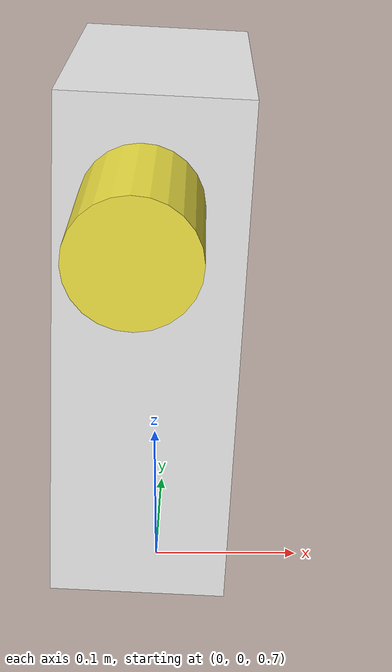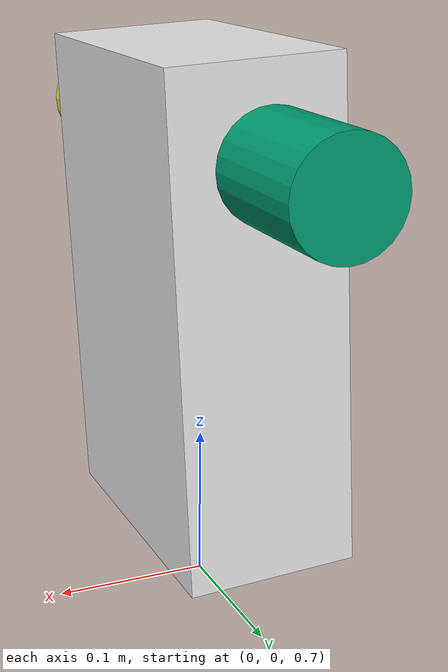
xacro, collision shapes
<?xml version="1.0"?>
<robot xmlns:xacro="http://www.ros.org/wiki/xacro" name="reachy_bipedal">

    <xacro:arg name="use_fake_hardware" default="false"/>
    <xacro:arg name="use_gazebo" default="false"/>

    <xacro:arg name="robot_config" default="full"/>
    <xacro:arg name="orbita_hardware_zero" default="0.0, 0.0, 0.0"/>

    <xacro:include filename="$(find bipedal_description)/urdf/leg.urdf.xacro"/>

    <link name="world"/>
    <joint name="world_joint" type="fixed">
        <origin xyz="0 0 1.0" rpy="0 0 0"/>
        <parent link="world"/>
        <child link="hip"/>
    </joint>

    <link name="hip">
        <inertial>
            <origin xyz="0.0 0.019 -0.009" rpy="0.0 0.0 0.0"/>
            <mass value="0.527"/>
            <inertia ixx="2.89598e-3" ixy="-1.16791e-6" ixz="-8.28749e-6" iyy="4.491e-3" iyz="2.343e-4" izz="3.995e-3"/>
        </inertial>
        <visual name="">
            <origin xyz="0.0 0.0 0.0" rpy="0.0 0.0 0.0"/>
            <geometry>
                <mesh filename="file://$(find bipedal_description)/meshes/torso.dae"/>
            </geometry>
        </visual>
        <collision>
            <origin xyz="0 0 -0.1" rpy="0 0.05 0"/>
            <geometry>
                <box size="0.11 0.2 0.32"/>
            </geometry>
        </collision>
    </link>

    <gazebo reference="hip">
        <material>Gazebo/White</material>
        <static>true</static>
    </gazebo>

    <!--MODEL PARAMETERS-->
    <xacro:property name="damping" value="0.1"/>
    <xacro:property name="friction" value="0.1"/>
    <xacro:property name="robot_config" value="$(arg robot_config)"/>

    <xacro:if value="${robot_config == 'full'}">
        <xacro:property name="use_right_leg" value="true"/>
        <xacro:property name="use_left_leg" value="true"/>
    </xacro:if>

    <xacro:if value="${robot_config == 'left'}">
        <xacro:property name="use_right_leg" value="false"/>
        <xacro:property name="use_left_leg" value="true"/>
    </xacro:if>

    <xacro:if value="${robot_config == 'right'}">
        <xacro:property name="use_right_leg" value="true"/>
        <xacro:property name="use_left_leg" value="false"/>
    </xacro:if>

    <xacro:if value="${use_left_leg}">
        <!-- LEFT LEG-->
        <xacro:leg
                prefix="l" parent="hip" side="left"
                damping="${damping}" friction="${friction}"
                serial_port="/dev/usb2ax_left_leg"
                mx_ids="20, 21, 22, 23, 24, 25, 26, 27"
                offsets="1.57, -1.57, 0.0, 0.0, 0.0, 0.0, 0.0, 0.0"
                is_direct="1.0, 0.0, 0.0, 0.0, 0.0, 0.0, 0.0, 1.0"
                reductions="1.0, 1.0, 1.0, 1.0, 1.0, 1.0, 1.0, -2.0"
        />
    </xacro:if>

    <xacro:if value="${use_right_leg}">
        <!-- RIGHT LEG-->
        <xacro:leg
                prefix="r" parent="hip" side="right"
                damping="${damping}" friction="${friction}"
                serial_port="/dev/usb2ax_right_leg"
                mx_ids="10, 11, 12, 13, 14, 15, 16, 17"
                offsets="1.57, 1.57, 0.0, 0.0, 0.0, 0.0, 0.0, 0.0"
                is_direct="0.0, 0.0, 0.0, 0.0, 0.0, 0.0, 0.0, 1.0"
                reductions="1.0, 1.0, 1.0, 1.0, 1.0, 1.0, 1.0, -2.0"
        />
    </xacro:if>

    <xacro:if value="$(arg use_gazebo)">
        <gazebo>
            <plugin name="gazebo_ros2_control" filename="libgazebo_ros2_control.so">
                <parameters>$(find bipedal_bringup)/config/bipedal_${robot_config}_controllers.yaml</parameters>
                <robotNamespace>/bipedal</robotNamespace>
            </plugin>
        </gazebo>
    </xacro:if>
</robot>

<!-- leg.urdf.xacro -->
<robot xmlns:xacro="http://www.ros.org/wiki/xacro">
    <xacro:macro name="leg"
                 params="prefix parent side damping friction serial_port mx_ids offsets is_direct reductions">

        <xacro:include filename="$(find bipedal_description)/ros2_control/leg.ros2_control.xacro"/>

        <xacro:if value="${side == 'left'}">
            <xacro:property name="reflect" value="-1"/>
            <xacro:property name="leg_y" value="0.044"/>
        </xacro:if>
        <xacro:if value="${side == 'right'}">
            <xacro:property name="reflect" value="1"/>
            <xacro:property name="leg_y" value="0.036"/>
        </xacro:if>

        <link name="${prefix}_leg">
            <inertial>
                <origin xyz="-0.016 ${leg_y} 0.0" rpy="${1.57*reflect} 1.57 0.0"/>
                <mass value="0.053"/>
                <inertia ixx="3.308e-4" ixy="9.972e-8" ixz="-2.037e-9" iyy="4.650e-5" iyz="2.113e-6" izz="3.545e-5"/>
            </inertial>
            <visual name="">
                <origin xyz="0.0 ${0.04*reflect} 0.0" rpy="${1.57*reflect} 1.57 0.0"/>
                <geometry>
                    <mesh filename="file://$(find bipedal_description)/meshes/forearm.dae"/>
                </geometry>
            </visual>
            <collision>
                <origin xyz="0.0 ${0.04*reflect} 0.0" rpy="${1.57*reflect} 1.57 0.0"/>
                <geometry>
                    <cylinder length="0.09" radius="0.035"/>
                </geometry>
            </collision>
        </link>

        <joint name="${prefix}_leg_pitch" type="revolute">
            <origin xyz="0.0 ${-0.19*reflect} 0.0" rpy="0.0 0.0 0.0"/>
            <parent link="${parent}"/>
            <child link="${prefix}_leg"/>
            <axis xyz="0 1 0"/>
            <limit lower="-2.618" upper="1.57" effort="10." velocity="0.0"/>
            <dynamics damping="${damping}" friction="${friction}"/>
        </joint>

        <xacro:leg_control
                name="${prefix}"
                serial_port="${serial_port}"
                mx_ids="${mx_ids}"
                offsets="${offsets}"
                is_direct="${is_direct}"
                reductions="${reductions}"
        />

    </xacro:macro>
</robot>
